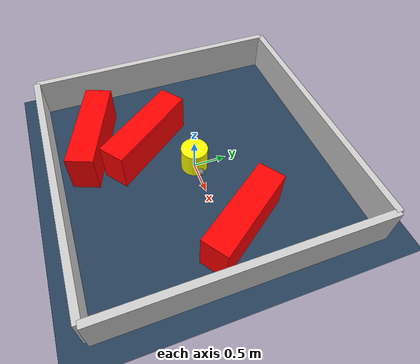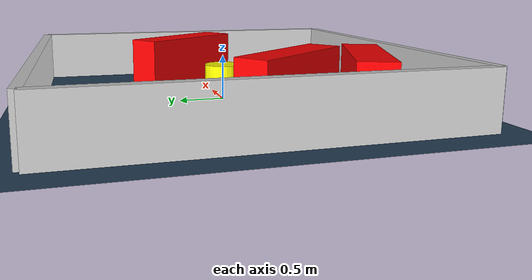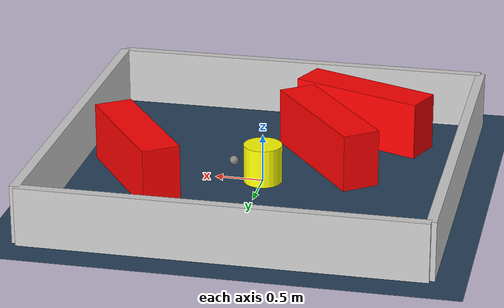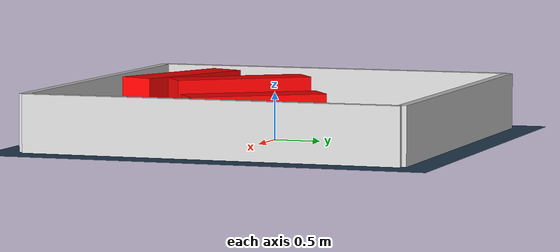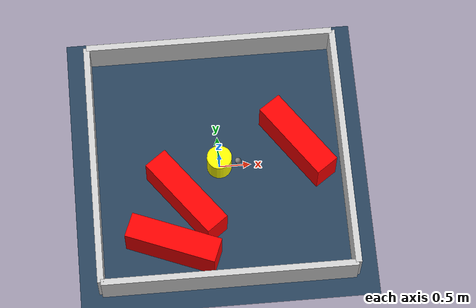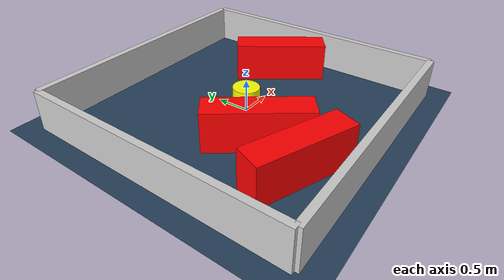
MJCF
<?xml version="1.0" ?>
<mujoco model="generated_environment">
  <option timestep="0.01" integrator="RK4" cone="elliptic"/>
  <default>
    <geom density="1"/>
  </default>
  <asset>
    <texture builtin="gradient" height="3072" rgb1="0.3 0.5 0.7" rgb2="0 0 0" type="skybox" width="512"/>
    <texture builtin="checker" height="300" mark="edge" markrgb="0.8 0.8 0.8" name="groundplane" rgb1="0.2 0.3 0.4" rgb2="0.1 0.2 0.3" type="2d" width="300"/>
    <material name="groundplane" reflectance="0.2" texrepeat="5 5" texture="groundplane" texuniform="true"/>
    <material name="robot" rgba="0.0 1.0 0.0 1"/>
  </asset>
  <worldbody>
    <light dir="0 0 -1" directional="true" pos="0 0 1.5"/>
    <geom condim="4" friction="1.0 0.005 0.001" material="groundplane" name="floor" size="0 0 0.05" type="plane"/>
    <body name="walls">
      <geom name="wall_1" condim="4" pos="-2.0 0.0 0.3" rgba="0.800000011920929 0.800000011920929 0.800000011920929 1.0" size="0.05 2.0 0.3" type="box"/>
      <geom name="wall_2" condim="4" pos="2.0 0.0 0.3" rgba="0.800000011920929 0.800000011920929 0.800000011920929 1.0" size="0.05 2.0 0.3" type="box"/>
      <geom name="wall_3" condim="4" pos="0.0 -2.0 0.3" rgba="0.800000011920929 0.800000011920929 0.800000011920929 1.0" size="2.0 0.05 0.3" type="box"/>
      <geom name="wall_4" condim="4" pos="0.0 2.0 0.3" rgba="0.800000011920929 0.800000011920929 0.800000011920929 1.0" size="2.0 0.05 0.3" type="box"/>
    </body>
    <body name="robot">
      <joint name="joint_x" type="slide" pos="0 0 0" axis="1 0 0"/>
      <joint name="joint_y" type="slide" pos="0 0 0" axis="0 1 0"/>
      <geom name="robot" type="sphere" pos="0.3 0.0 0.2" size="0.05" mass="5." friction="1.0 0.005 0.0001" condim="4" rgba="0.5 0.5 0.5 1.0"/>
      <site name="sensor_ball"/>
    </body>
    <body name="obstacle_movable_1">
      <geom name="obstacle_movable_1" condim="4" pos="0.0 0.0 0.2" euler="0 0 0.0" friction="1.0 0.005 0.001" rgba="1.0 1.0 0.0 1.0" size="0.2 0.2 0.0" type="cylinder" mass="0.1"/>
      <joint type="free"/>
    </body>
    <body name="obstacle_2_static">
      <geom name="obstacle_2_static" condim="4" pos="-0.8308658611171671 -1.3585257679623928 0.3" euler="0 0 338.2266054948408" friction="1.0 0.005 0.001" rgba="1 0 0 1" size="0.7321679273240025 0.2 0.3" type="box"/>
    </body>
    <body name="obstacle_3_static">
      <geom name="obstacle_3_static" condim="4" pos="-0.5715193129664143 -0.599977301257367 0.3" euler="0 0 127.0442057096151" friction="1.0 0.005 0.001" rgba="1 0 0 1" size="0.7452307122888675 0.2 0.3" type="box"/>
    </body>
    <body name="obstacle_4_static">
      <geom name="obstacle_4_static" condim="4" pos="1.2768773045558295 0.21959538897048758 0.3" euler="0 0 125.20438045753446" friction="1.0 0.005 0.001" rgba="1 0 0 1" size="0.71133968942624 0.2 0.3" type="box"/>
    </body>
  </worldbody>
  <actuator>
    <motor name="actuator_x" joint="joint_x" gear="1" ctrlrange="-1 1"/>
    <motor name="actuator_y" joint="joint_y" gear="1" ctrlrange="-1 1"/>
  </actuator>
</mujoco>
